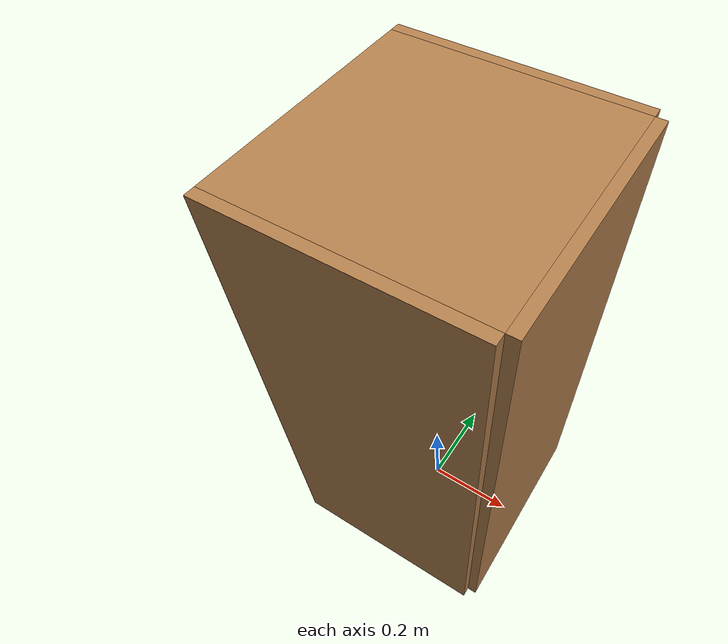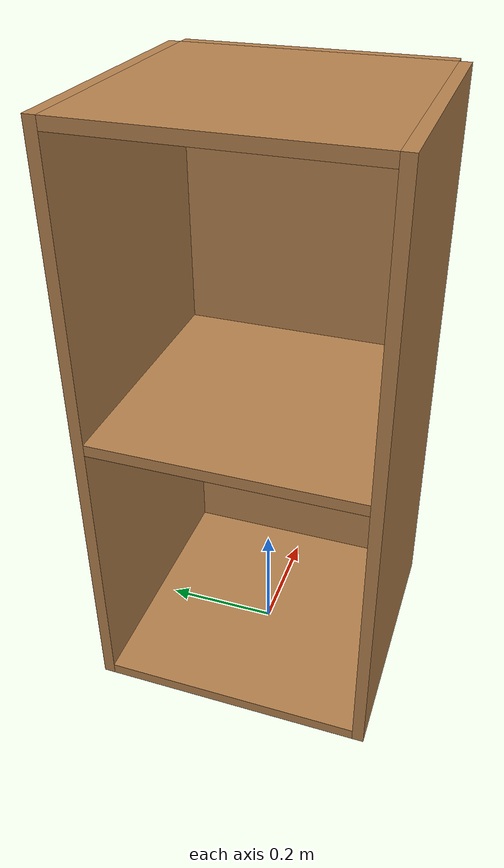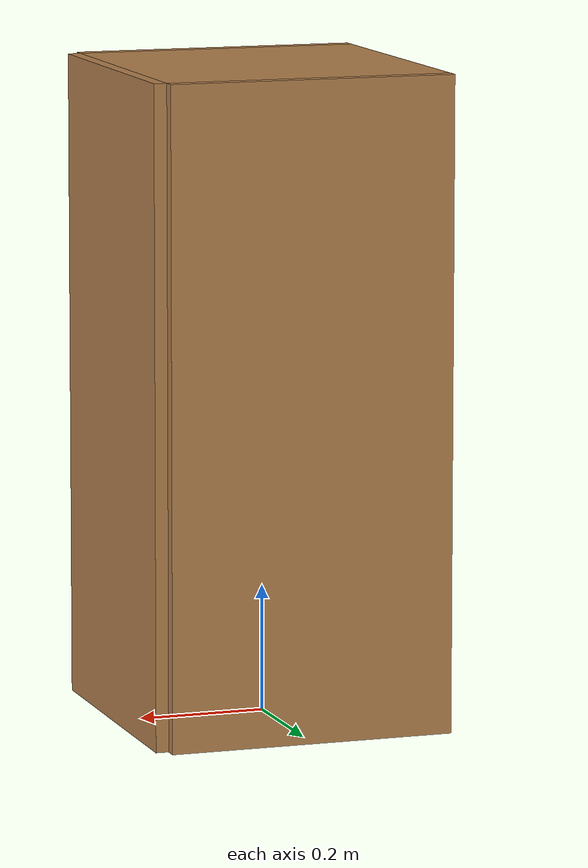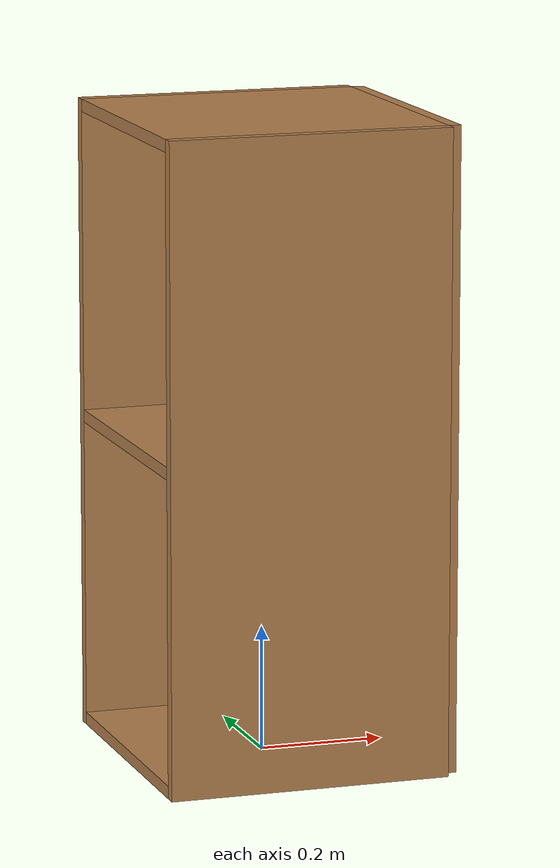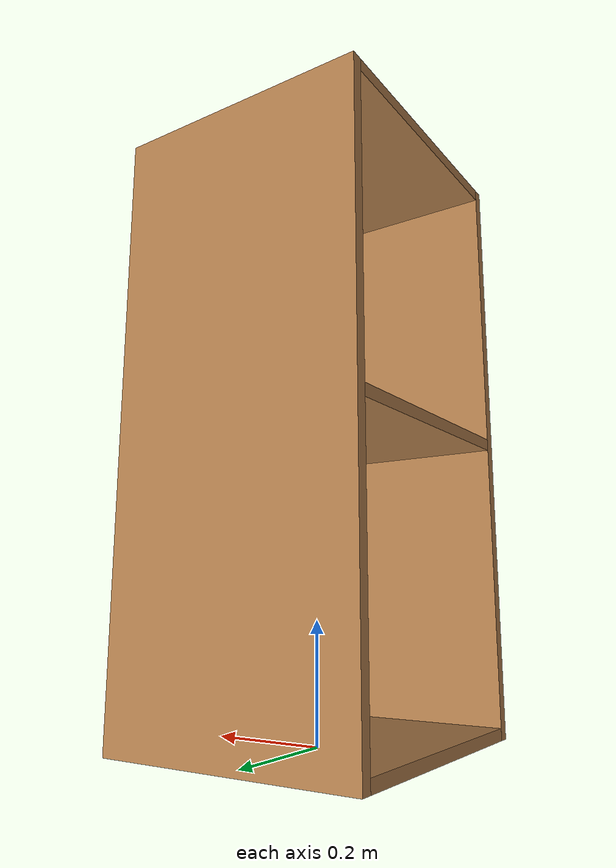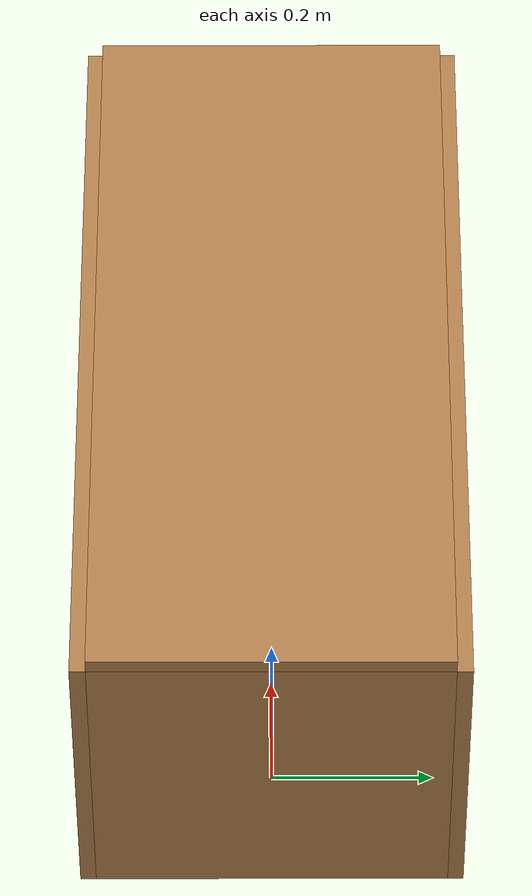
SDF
<?xml version='1.0'?>
<sdf version='1.7'>
  <model name='cabinet'>
    <link name='cabinet_bottom_plate'>
      <inertial>
        <pose>0 0 -1 0 -0 0</pose>
        <inertia>
          <ixx>2.05</ixx>
          <ixy>0</ixy>
          <ixz>0</ixz>
          <iyy>2.05</iyy>
          <iyz>0</iyz>
          <izz>2.05</izz>
        </inertia>
        <mass>25</mass>
      </inertial>
      <self_collide>0</self_collide>
      <enable_wind>0</enable_wind>
      <kinematic>0</kinematic>
      <pose>0 0 0 0 -0 0</pose>
      <visual name='cabinet_bottom_plate_geom_cabinet_middle_plate_visual'>
        <pose>0 0 0.51 0 -0 0</pose>
        <geometry>
          <box>
            <size>0.45 0.45 0.02</size>
          </box>
        </geometry>
        <material>
          <script>
            <uri>file://media/materials/scripts/gazebo.material</uri>
            <name>Gazebo/Wood</name>
          </script>
          <shader type='pixel'/>
        </material>
        <transparency>0</transparency>
        <cast_shadows>1</cast_shadows>
      </visual>
      <visual name='cabinet_bottom_plate_geom_visual'>
        <pose>0 0 0.01 0 -0 0</pose>
        <geometry>
          <box>
            <size>0.45 0.45 0.02</size>
          </box>
        </geometry>
        <material>
          <script>
            <uri>file://media/materials/scripts/gazebo.material</uri>
            <name>Gazebo/Wood</name>
          </script>
          <shader type='pixel'/>
        </material>
        <transparency>0</transparency>
        <cast_shadows>1</cast_shadows>
      </visual>
      <visual name='cabinet_bottom_plate_geom_cabinet_right_plate_visual'>
        <pose>0 -0.235 0.51 0 -0 0</pose>
        <geometry>
          <box>
            <size>0.45 0.02 1.02</size>
          </box>
        </geometry>
        <material>
          <script>
            <uri>file://media/materials/scripts/gazebo.material</uri>
            <name>Gazebo/Wood</name>
          </script>
          <shader type='pixel'/>
        </material>
        <transparency>0</transparency>
        <cast_shadows>1</cast_shadows>
      </visual>
      <visual name='cabinet_bottom_plate_geom_cabinet_top_plate_visual'>
        <pose>0 0 1.01 0 -0 0</pose>
        <geometry>
          <box>
            <size>0.45 0.45 0.02</size>
          </box>
        </geometry>
        <material>
          <script>
            <uri>file://media/materials/scripts/gazebo.material</uri>
            <name>Gazebo/Wood</name>
          </script>
          <shader type='pixel'/>
        </material>
        <transparency>0</transparency>
        <cast_shadows>1</cast_shadows>
      </visual>
      <visual name='cabinet_bottom_plate_geom_cabinet_left_plate_visual'>
        <pose>0 0.235 0.51 0 -0 0</pose>
        <geometry>
          <box>
            <size>0.45 0.02 1.02</size>
          </box>
        </geometry>
        <material>
          <script>
            <uri>file://media/materials/scripts/gazebo.material</uri>
            <name>Gazebo/Wood</name>
          </script>
          <shader type='pixel'/>
        </material>
        <transparency>0</transparency>
        <cast_shadows>1</cast_shadows>
      </visual>
      <visual name='cabinet_bottom_plate_geom_cabinet_back_plate_visual'>
        <pose>0.235 0 0.51 0 -0 0</pose>
        <geometry>
          <box>
            <size>0.02 0.45 1.02</size>
          </box>
        </geometry>
        <material>
          <script>
            <uri>file://media/materials/scripts/gazebo.material</uri>
            <name>Gazebo/Wood</name>
          </script>
          <shader type='pixel'/>
        </material>
        <transparency>0</transparency>
        <cast_shadows>1</cast_shadows>
      </visual>
      <collision name='cabinet_bottom_plate_geom_cabinet_top_plate'>
        <laser_retro>0</laser_retro>
        <max_contacts>10</max_contacts>
        <pose>0 0 1.01 0 -0 0</pose>
        <geometry>
          <box>
            <size>0.45 0.45 0.02</size>
          </box>
        </geometry>
        <surface>
          <friction>
            <ode>
              <mu>1</mu>
              <mu2>1</mu2>
              <fdir1>0 0 0</fdir1>
              <slip1>0</slip1>
              <slip2>0</slip2>
            </ode>
            <torsional>
              <coefficient>1</coefficient>
              <patch_radius>0</patch_radius>
              <surface_radius>0</surface_radius>
              <use_patch_radius>1</use_patch_radius>
              <ode>
                <slip>0</slip>
              </ode>
            </torsional>
          </friction>
          <bounce>
            <restitution_coefficient>0</restitution_coefficient>
            <threshold>1e+06</threshold>
          </bounce>
          <contact>
            <collide_without_contact>0</collide_without_contact>
            <collide_without_contact_bitmask>1</collide_without_contact_bitmask>
            <collide_bitmask>1</collide_bitmask>
            <ode>
              <soft_cfm>0</soft_cfm>
              <soft_erp>0.2</soft_erp>
              <kp>1e+13</kp>
              <kd>1</kd>
              <max_vel>0.01</max_vel>
              <min_depth>0</min_depth>
            </ode>
            <bullet>
              <split_impulse>1</split_impulse>
              <split_impulse_penetration_threshold>-0.01</split_impulse_penetration_threshold>
              <soft_cfm>0</soft_cfm>
              <soft_erp>0.2</soft_erp>
              <kp>1e+13</kp>
              <kd>1</kd>
            </bullet>
          </contact>
        </surface>
      </collision>
      <collision name='cabinet_bottom_plate_geom'>
        <laser_retro>0</laser_retro>
        <max_contacts>10</max_contacts>
        <pose>0 0 0.01 0 -0 0</pose>
        <geometry>
          <box>
            <size>0.45 0.45 0.02</size>
          </box>
        </geometry>
        <surface>
          <friction>
            <ode>
              <mu>1</mu>
              <mu2>1</mu2>
              <fdir1>0 0 0</fdir1>
              <slip1>0</slip1>
              <slip2>0</slip2>
            </ode>
            <torsional>
              <coefficient>1</coefficient>
              <patch_radius>0</patch_radius>
              <surface_radius>0</surface_radius>
              <use_patch_radius>1</use_patch_radius>
              <ode>
                <slip>0</slip>
              </ode>
            </torsional>
          </friction>
          <bounce>
            <restitution_coefficient>0</restitution_coefficient>
            <threshold>1e+06</threshold>
          </bounce>
          <contact>
            <collide_without_contact>0</collide_without_contact>
            <collide_without_contact_bitmask>1</collide_without_contact_bitmask>
            <collide_bitmask>1</collide_bitmask>
            <ode>
              <soft_cfm>0</soft_cfm>
              <soft_erp>0.2</soft_erp>
              <kp>1e+13</kp>
              <kd>1</kd>
              <max_vel>0.01</max_vel>
              <min_depth>0</min_depth>
            </ode>
            <bullet>
              <split_impulse>1</split_impulse>
              <split_impulse_penetration_threshold>-0.01</split_impulse_penetration_threshold>
              <soft_cfm>0</soft_cfm>
              <soft_erp>0.2</soft_erp>
              <kp>1e+13</kp>
              <kd>1</kd>
            </bullet>
          </contact>
        </surface>
      </collision>
      <collision name='cabinet_bottom_plate_geom_cabinet_middle_plate'>
        <laser_retro>0</laser_retro>
        <max_contacts>10</max_contacts>
        <pose>0 0 0.51 0 -0 0</pose>
        <geometry>
          <box>
            <size>0.45 0.45 0.02</size>
          </box>
        </geometry>
        <surface>
          <friction>
            <ode>
              <mu>1</mu>
              <mu2>1</mu2>
              <fdir1>0 0 0</fdir1>
              <slip1>0</slip1>
              <slip2>0</slip2>
            </ode>
            <torsional>
              <coefficient>1</coefficient>
              <patch_radius>0</patch_radius>
              <surface_radius>0</surface_radius>
              <use_patch_radius>1</use_patch_radius>
              <ode>
                <slip>0</slip>
              </ode>
            </torsional>
          </friction>
          <bounce>
            <restitution_coefficient>0</restitution_coefficient>
            <threshold>1e+06</threshold>
          </bounce>
          <contact>
            <collide_without_contact>0</collide_without_contact>
            <collide_without_contact_bitmask>1</collide_without_contact_bitmask>
            <collide_bitmask>1</collide_bitmask>
            <ode>
              <soft_cfm>0</soft_cfm>
              <soft_erp>0.2</soft_erp>
              <kp>1e+13</kp>
              <kd>1</kd>
              <max_vel>0.01</max_vel>
              <min_depth>0</min_depth>
            </ode>
            <bullet>
              <split_impulse>1</split_impulse>
              <split_impulse_penetration_threshold>-0.01</split_impulse_penetration_threshold>
              <soft_cfm>0</soft_cfm>
              <soft_erp>0.2</soft_erp>
              <kp>1e+13</kp>
              <kd>1</kd>
            </bullet>
          </contact>
        </surface>
      </collision>
      <collision name='cabinet_bottom_plate_geom_cabinet_right_plate'>
        <laser_retro>0</laser_retro>
        <max_contacts>10</max_contacts>
        <pose>0 -0.235 0.51 0 -0 0</pose>
        <geometry>
          <box>
            <size>0.45 0.02 1.02</size>
          </box>
        </geometry>
        <surface>
          <friction>
            <ode>
              <mu>1</mu>
              <mu2>1</mu2>
              <fdir1>0 0 0</fdir1>
              <slip1>0</slip1>
              <slip2>0</slip2>
            </ode>
            <torsional>
              <coefficient>1</coefficient>
              <patch_radius>0</patch_radius>
              <surface_radius>0</surface_radius>
              <use_patch_radius>1</use_patch_radius>
              <ode>
                <slip>0</slip>
              </ode>
            </torsional>
          </friction>
          <bounce>
            <restitution_coefficient>0</restitution_coefficient>
            <threshold>1e+06</threshold>
          </bounce>
          <contact>
            <collide_without_contact>0</collide_without_contact>
            <collide_without_contact_bitmask>1</collide_without_contact_bitmask>
            <collide_bitmask>1</collide_bitmask>
            <ode>
              <soft_cfm>0</soft_cfm>
              <soft_erp>0.2</soft_erp>
              <kp>1e+13</kp>
              <kd>1</kd>
              <max_vel>0.01</max_vel>
              <min_depth>0</min_depth>
            </ode>
            <bullet>
              <split_impulse>1</split_impulse>
              <split_impulse_penetration_threshold>-0.01</split_impulse_penetration_threshold>
              <soft_cfm>0</soft_cfm>
              <soft_erp>0.2</soft_erp>
              <kp>1e+13</kp>
              <kd>1</kd>
            </bullet>
          </contact>
        </surface>
      </collision>
      <collision name='cabinet_bottom_plate_geom_cabinet_left_plate'>
        <laser_retro>0</laser_retro>
        <max_contacts>10</max_contacts>
        <pose>0 0.235 0.51 0 -0 0</pose>
        <geometry>
          <box>
            <size>0.45 0.02 1.02</size>
          </box>
        </geometry>
        <surface>
          <friction>
            <ode>
              <mu>1</mu>
              <mu2>1</mu2>
              <fdir1>0 0 0</fdir1>
              <slip1>0</slip1>
              <slip2>0</slip2>
            </ode>
            <torsional>
              <coefficient>1</coefficient>
              <patch_radius>0</patch_radius>
              <surface_radius>0</surface_radius>
              <use_patch_radius>1</use_patch_radius>
              <ode>
                <slip>0</slip>
              </ode>
            </torsional>
          </friction>
          <bounce>
            <restitution_coefficient>0</restitution_coefficient>
            <threshold>1e+06</threshold>
          </bounce>
          <contact>
            <collide_without_contact>0</collide_without_contact>
            <collide_without_contact_bitmask>1</collide_without_contact_bitmask>
            <collide_bitmask>1</collide_bitmask>
            <ode>
              <soft_cfm>0</soft_cfm>
              <soft_erp>0.2</soft_erp>
              <kp>1e+13</kp>
              <kd>1</kd>
              <max_vel>0.01</max_vel>
              <min_depth>0</min_depth>
            </ode>
            <bullet>
              <split_impulse>1</split_impulse>
              <split_impulse_penetration_threshold>-0.01</split_impulse_penetration_threshold>
              <soft_cfm>0</soft_cfm>
              <soft_erp>0.2</soft_erp>
              <kp>1e+13</kp>
              <kd>1</kd>
            </bullet>
          </contact>
        </surface>
      </collision>
      <collision name='cabinet_bottom_plate_geom_cabinet_back_plate'>
        <laser_retro>0</laser_retro>
        <max_contacts>10</max_contacts>
        <pose>0.235 0 0.51 0 -0 0</pose>
        <geometry>
          <box>
            <size>0.02 0.45 1.02</size>
          </box>
        </geometry>
        <surface>
          <friction>
            <ode>
              <mu>1</mu>
              <mu2>1</mu2>
              <fdir1>0 0 0</fdir1>
              <slip1>0</slip1>
              <slip2>0</slip2>
            </ode>
            <torsional>
              <coefficient>1</coefficient>
              <patch_radius>0</patch_radius>
              <surface_radius>0</surface_radius>
              <use_patch_radius>1</use_patch_radius>
              <ode>
                <slip>0</slip>
              </ode>
            </torsional>
          </friction>
          <bounce>
            <restitution_coefficient>0</restitution_coefficient>
            <threshold>1e+06</threshold>
          </bounce>
          <contact>
            <collide_without_contact>0</collide_without_contact>
            <collide_without_contact_bitmask>1</collide_without_contact_bitmask>
            <collide_bitmask>1</collide_bitmask>
            <ode>
              <soft_cfm>0</soft_cfm>
              <soft_erp>0.2</soft_erp>
              <kp>1e+13</kp>
              <kd>1</kd>
              <max_vel>0.01</max_vel>
              <min_depth>0</min_depth>
            </ode>
            <bullet>
              <split_impulse>1</split_impulse>
              <split_impulse_penetration_threshold>-0.01</split_impulse_penetration_threshold>
              <soft_cfm>0</soft_cfm>
              <soft_erp>0.2</soft_erp>
              <kp>1e+13</kp>
              <kd>1</kd>
            </bullet>
          </contact>
        </surface>
      </collision>
    </link>
    <static>1</static>
    <allow_auto_disable>1</allow_auto_disable>
  </model>
</sdf>
